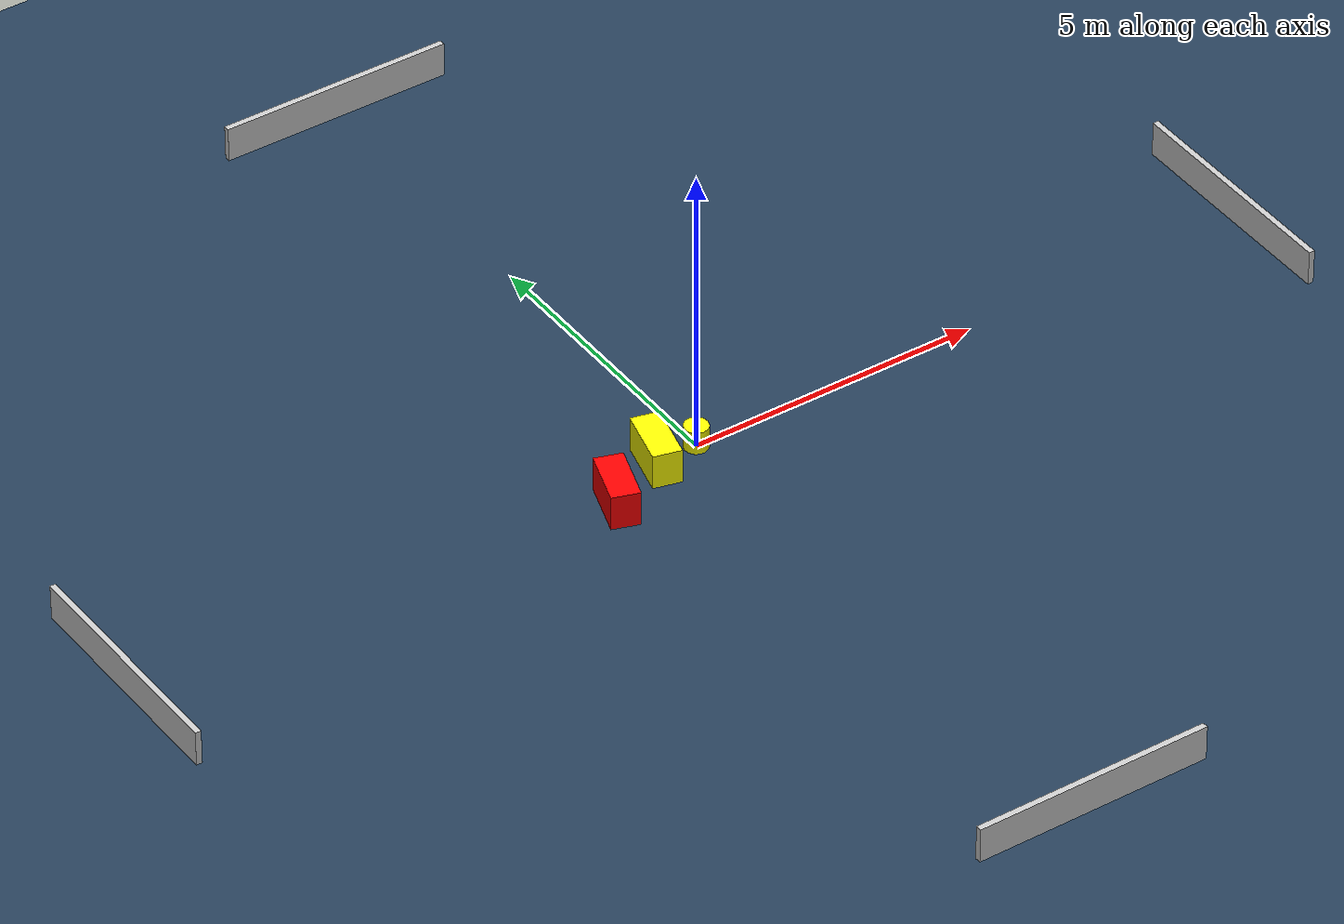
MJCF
<?xml version="1.0" ?>
<mujoco model="generated_environment">
  <option timestep="0.01" integrator="RK4" cone="elliptic"/>
  <default>
    <geom density="1"/>
  </default>
  <asset>
    <texture builtin="gradient" height="3072" name="skybox" rgb1="0.3 0.5 0.7" rgb2="0 0 0" type="skybox" width="512"/>
    <texture builtin="checker" height="300" name="groundplane" rgb1="0.2 0.3 0.4" rgb2="0.1 0.2 0.3" type="2d" width="300"/>
    <material name="groundplane" reflectance="0.2" texrepeat="5 5" texture="groundplane"/>
  </asset>
  <worldbody>
    <light dir="0 0 -1" directional="true" pos="0 0 1.5"/>
    <geom condim="3" friction="0.5 0.005 0.001" material="groundplane" name="floor" pos="0 0 0" size="0 0 0.05" type="plane"/>
    <body name="walls">
      <geom name="wall_1" condim="4" pos="-10.0 0.0 0.3" rgba="0.800000011920929 0.800000011920929 0.800000011920929 1.0" size="0.05 2.0 0.3" type="box"/>
      <geom name="wall_2" condim="4" pos="10.0 0.0 0.3" rgba="0.800000011920929 0.800000011920929 0.800000011920929 1.0" size="0.05 2.0 0.3" type="box"/>
      <geom name="wall_3" condim="4" pos="0.0 -10.0 0.3" rgba="0.800000011920929 0.800000011920929 0.800000011920929 1.0" size="2.0 0.05 0.3" type="box"/>
      <geom name="wall_4" condim="4" pos="0.0 10.0 0.3" rgba="0.800000011920929 0.800000011920929 0.800000011920929 1.0" size="2.0 0.05 0.3" type="box"/>
    </body>
    <body name="robot">
      <joint name="joint_x" type="slide" pos="0 0 0" axis="1 0 0"/>
      <joint name="joint_y" type="slide" pos="0 0 0" axis="0 1 0"/>
      <geom name="robot" type="cylinder" pos="0.0 0.0 0.2" size="0.2 0.2 0.0" mass="5.0" friction="1.0 0.005 0.0001" condim="4" rgba="1.0 1.0 0.0 1.0"/>
    </body>
    <body name="obstacle_1_movable">
      <geom name="obstacle_1_movable" condim="4" pos="-0.7559022557020717 -0.045082516033721466 0.3" euler="0 0 165.97260071115923" friction="0.0 0.005 0.001" rgba="1.0 1.0 0.0 1.0" size="0.2386743469333764 0.4971423677001095 0.3" type="box" mass="0.1"/>
      <joint type="free"/>
    </body>
    <body name="obstacle_2_static">
      <geom name="obstacle_2_static" condim="4" pos="-1.7817924276997876 -0.529581156017616 0.3" euler="0 0 161.70546092679004" friction="0.0 0.005 0.001" rgba="1.0 0.0 0.0 1.0" size="0.2365068442302804 0.49139633159779905 0.3" type="box"/>
    </body>
  </worldbody>
  <actuator>
    <motor name="actuator_x" joint="joint_x" gear="1" ctrlrange="-1 1"/>
    <motor name="actuator_y" joint="joint_y" gear="1" ctrlrange="-1 1"/>
  </actuator>
</mujoco>
